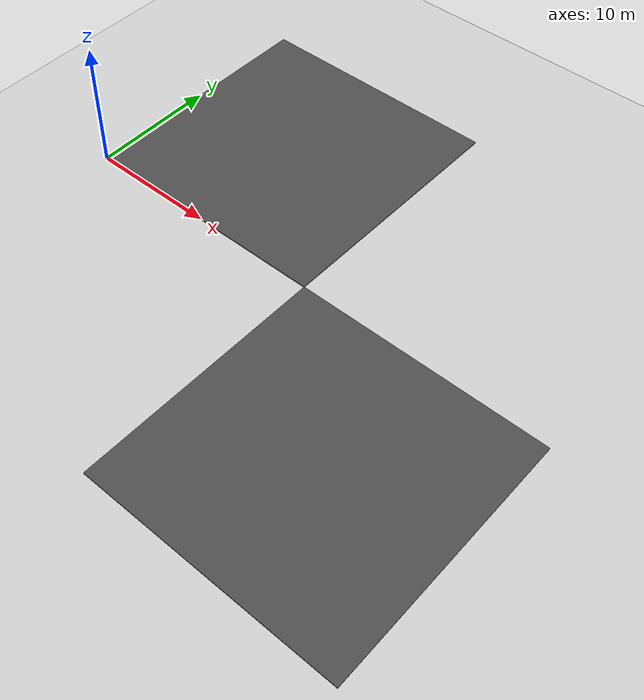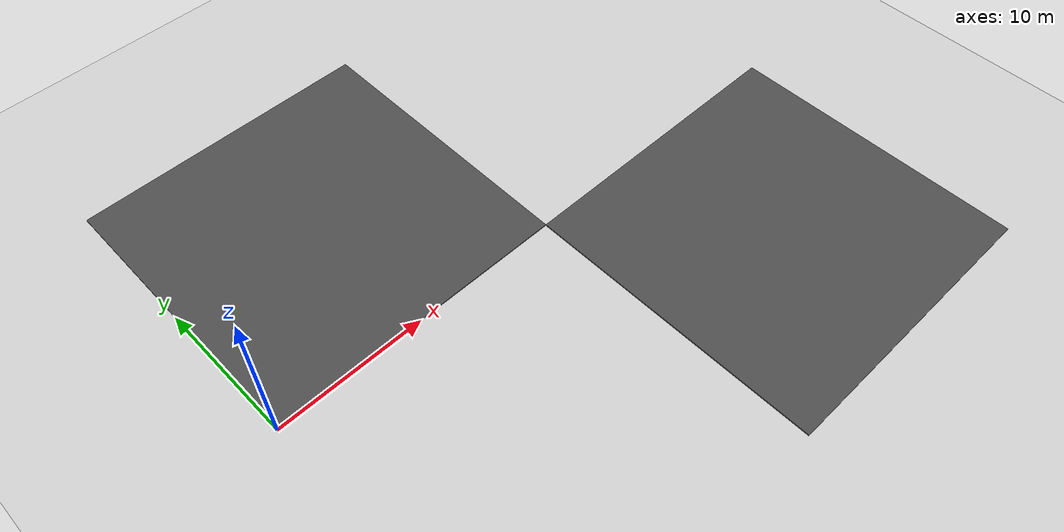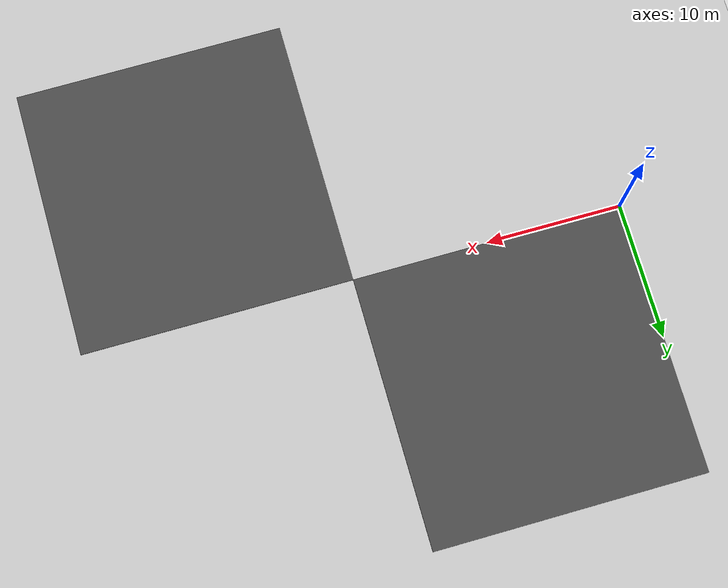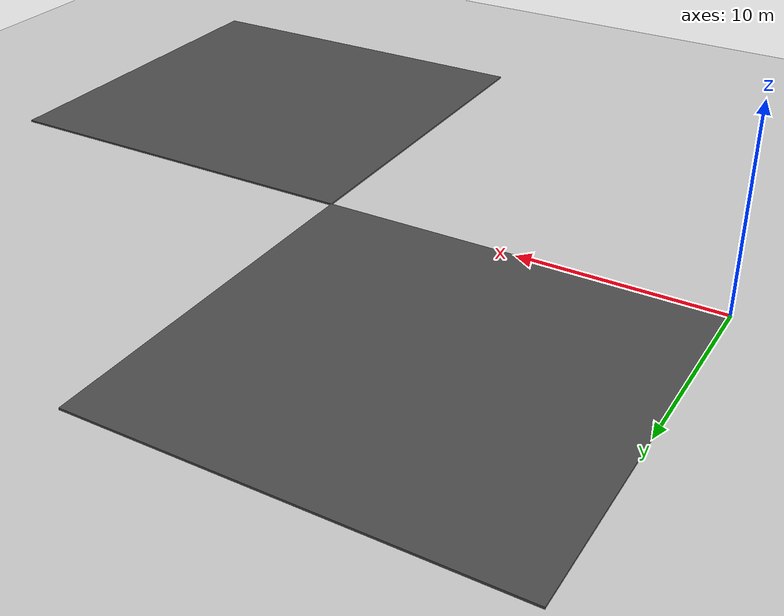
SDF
<sdf version="1.4">
 <world name="default">
  <model name="ground_plane">
   <static>1</static>
   <link name="link">
    <collision name="collision">
     <geometry><plane><normal>0 0 1</normal><size>100 100</size></plane></geometry>
     <surface><friction><ode><mu>100</mu><mu2>50</mu2></ode></friction></surface>
    </collision>
    <visual name="visual">
     <cast_shadows>0</cast_shadows>
     <geometry><plane><normal>0 0 1</normal><size>100 100</size></plane></geometry>
     <material>
      <script><uri>file://media/materials/scripts/gazebo.material</uri><name>Gazebo/Grey</name></script>
     </material>
    </visual>
    <velocity_decay><linear>0</linear><angular>0</angular></velocity_decay>
   </link>
  </model>
  <model name="asphalt_plane">
   <static>1</static>
   <link name="link">
    <collision name="collision"><geometry><box><size>20 20 0.1</size></box></geometry></collision>
    <visual name="visual">
     <cast_shadows>0</cast_shadows>
     <geometry><box><size>20 20 0.1</size></box></geometry>
     <material>
      <script>
       <uri>model://asphalt_plane/materials/scripts</uri>
       <uri>model://asphalt_plane/materials/textures</uri>
       <name>vrc/asphalt</name>
      </script>
     </material>
    </visual>
    <velocity_decay><linear>0</linear><angular>0</angular></velocity_decay>
   </link>
   <pose>10 10 0 0 -0 0</pose>
  </model>
  <model name="asphalt_plane_9">
   <static>1</static>
   <link name="link">
    <collision name="collision"><geometry><box><size>20 20 0.1</size></box></geometry></collision>
    <visual name="visual">
     <cast_shadows>0</cast_shadows>
     <geometry><box><size>20 20 0.1</size></box></geometry>
     <material>
      <script>
       <uri>model://asphalt_plane/materials/scripts</uri>
       <uri>model://asphalt_plane/materials/textures</uri>
       <name>vrc/asphalt</name>
      </script>
     </material>
    </visual>
    <velocity_decay><linear>0</linear><angular>0</angular></velocity_decay>
   </link>
   <pose>30 -10 0 0 -0 0</pose>
  </model>
 </world>
</sdf>
